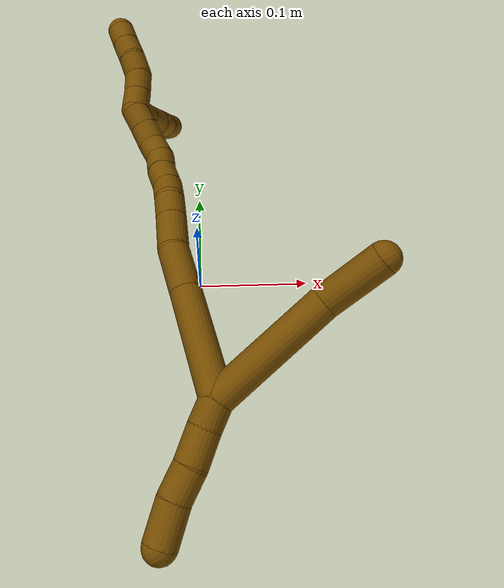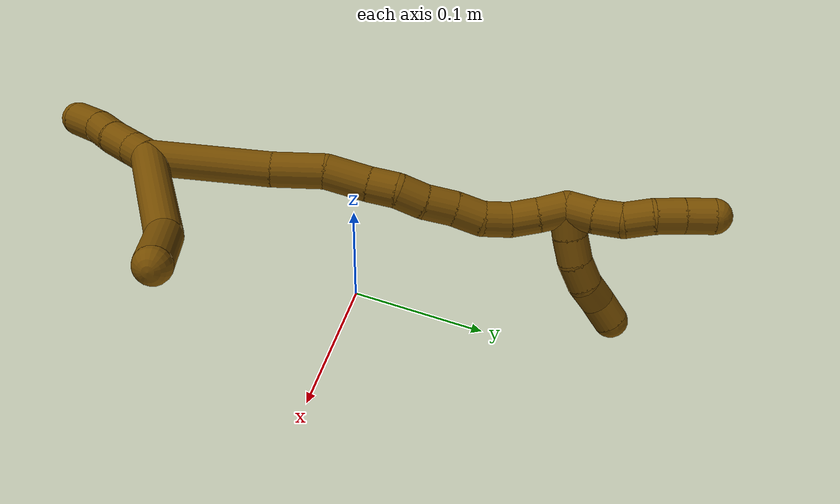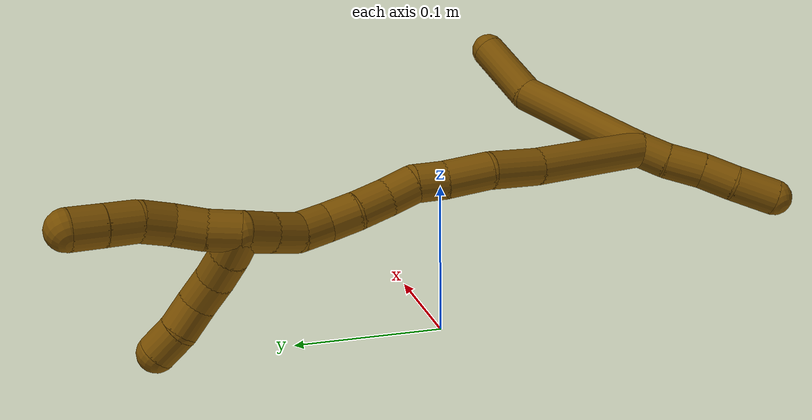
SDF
<sdf version="1.7">
 <world name="default">
  <model name="12">
   <static>0</static>
   <link name="12">
    <collision name="collision-cylinder-e_1_2_8">
     <pose>0.00521 0.019339 0.045405 -0.402648 0.105174 -0.021484</pose>
     <geometry><cylinder><radius>0.0125</radius><length>0.099252</length></cylinder></geometry>
     <surface>
      <friction><ode><mu>1.16</mu><mu2>1.16</mu2><slip1>0</slip1><slip2>0</slip2></ode></friction>
      <contact><ode><kp>1e+06</kp><kd>1</kd><max_vel>0</max_vel><min_depth>0.001</min_depth></ode></contact>
     </surface>
    </collision>
    <visual name="visual-cylinder-e_1_2_8">
     <pose>0.00521 0.019339 0.045405 -0.402648 0.105174 -0.021484</pose>
     <geometry><cylinder><radius>0.0125</radius><length>0.099252</length></cylinder></geometry>
     <material><ambient>0.466667 0.301961 0 1</ambient></material>
    </visual>
    <collision name="collision-cylinder-e_2_8_6">
     <pose>0.009434 0.04098 0.11606 -0.090934 -0.03883 0.001767</pose>
     <geometry><cylinder><radius>0.0125</radius><length>0.050748</length></cylinder></geometry>
     <surface>
      <friction><ode><mu>1.16</mu><mu2>1.16</mu2><slip1>0</slip1><slip2>0</slip2></ode></friction>
      <contact><ode><kp>1e+06</kp><kd>1</kd><max_vel>0</max_vel><min_depth>0.001</min_depth></ode></contact>
     </surface>
    </collision>
    <visual name="visual-cylinder-e_2_8_6">
     <pose>0.009434 0.04098 0.11606 -0.090934 -0.03883 0.001767</pose>
     <geometry><cylinder><radius>0.0125</radius><length>0.050748</length></cylinder></geometry>
     <material><ambient>0.466667 0.301961 0 1</ambient></material>
    </visual>
    <collision name="collision-cylinder-e_1_2_9">
     <pose>0.002166 -0.006467 -0.00761 2.43721 0.213586 0.567633</pose>
     <geometry><cylinder><radius>0.0125</radius><length>0.020439</length></cylinder></geometry>
     <surface>
      <friction><ode><mu>1.16</mu><mu2>1.16</mu2><slip1>0</slip1><slip2>0</slip2></ode></friction>
      <contact><ode><kp>1e+06</kp><kd>1</kd><max_vel>0</max_vel><min_depth>0.001</min_depth></ode></contact>
     </surface>
    </collision>
    <visual name="visual-cylinder-e_1_2_9">
     <pose>0.002166 -0.006467 -0.00761 2.43721 0.213586 0.567633</pose>
     <geometry><cylinder><radius>0.0125</radius><length>0.020439</length></cylinder></geometry>
     <material><ambient>0.466667 0.301961 0 1</ambient></material>
    </visual>
    <collision name="collision-cylinder-e_2_9_10">
     <pose>0.006646 -0.022443 -0.02375 2.302 0.17918 0.397223</pose>
     <geometry><cylinder><radius>0.0125</radius><length>0.025962</length></cylinder></geometry>
     <surface>
      <friction><ode><mu>1.16</mu><mu2>1.16</mu2><slip1>0</slip1><slip2>0</slip2></ode></friction>
      <contact><ode><kp>1e+06</kp><kd>1</kd><max_vel>0</max_vel><min_depth>0.001</min_depth></ode></contact>
     </surface>
    </collision>
    <visual name="visual-cylinder-e_2_9_10">
     <pose>0.006646 -0.022443 -0.02375 2.302 0.17918 0.397223</pose>
     <geometry><cylinder><radius>0.0125</radius><length>0.025962</length></cylinder></geometry>
     <material><ambient>0.466667 0.301961 0 1</ambient></material>
    </visual>
    <collision name="collision-cylinder-e_3_10_11">
     <pose>0.010814 -0.03943 -0.041311 2.44991 0.156828 0.429411</pose>
     <geometry><cylinder><radius>0.0125</radius><length>0.023743</length></cylinder></geometry>
     <surface>
      <friction><ode><mu>1.16</mu><mu2>1.16</mu2><slip1>0</slip1><slip2>0</slip2></ode></friction>
      <contact><ode><kp>1e+06</kp><kd>1</kd><max_vel>0</max_vel><min_depth>0.001</min_depth></ode></contact>
     </surface>
    </collision>
    <visual name="visual-cylinder-e_3_10_11">
     <pose>0.010814 -0.03943 -0.041311 2.44991 0.156828 0.429411</pose>
     <geometry><cylinder><radius>0.0125</radius><length>0.023743</length></cylinder></geometry>
     <material><ambient>0.466667 0.301961 0 1</ambient></material>
    </visual>
    <collision name="collision-cylinder-e_4_11_5">
     <pose>0.016606 -0.057453 -0.060148 2.31995 0.266955 0.598016</pose>
     <geometry><cylinder><radius>0.0125</radius><length>0.029856</length></cylinder></geometry>
     <surface>
      <friction><ode><mu>1.16</mu><mu2>1.16</mu2><slip1>0</slip1><slip2>0</slip2></ode></friction>
      <contact><ode><kp>1e+06</kp><kd>1</kd><max_vel>0</max_vel><min_depth>0.001</min_depth></ode></contact>
     </surface>
    </collision>
    <visual name="visual-cylinder-e_4_11_5">
     <pose>0.016606 -0.057453 -0.060148 2.31995 0.266955 0.598016</pose>
     <geometry><cylinder><radius>0.0125</radius><length>0.029856</length></cylinder></geometry>
     <material><ambient>0.466667 0.301961 0 1</ambient></material>
    </visual>
    <collision name="collision-cylinder-e_1_2_12">
     <pose>-0.015774 0.040805 0.001379 -1.53702 -0.368693 0.356708</pose>
     <geometry><cylinder><radius>0.0125</radius><length>0.08754</length></cylinder></geometry>
     <surface>
      <friction><ode><mu>1.16</mu><mu2>1.16</mu2><slip1>0</slip1><slip2>0</slip2></ode></friction>
      <contact><ode><kp>1e+06</kp><kd>1</kd><max_vel>0</max_vel><min_depth>0.001</min_depth></ode></contact>
     </surface>
    </collision>
    <visual name="visual-cylinder-e_1_2_12">
     <pose>-0.015774 0.040805 0.001379 -1.53702 -0.368693 0.356708</pose>
     <geometry><cylinder><radius>0.0125</radius><length>0.08754</length></cylinder></geometry>
     <material><ambient>0.466667 0.301961 0 1</ambient></material>
    </visual>
    <collision name="collision-cylinder-e_2_12_13">
     <pose>-0.039573 0.098562 0.003959 -1.50002 -0.441109 0.411818</pose>
     <geometry><cylinder><radius>0.0125</radius><length>0.037586</length></cylinder></geometry>
     <surface>
      <friction><ode><mu>1.16</mu><mu2>1.16</mu2><slip1>0</slip1><slip2>0</slip2></ode></friction>
      <contact><ode><kp>1e+06</kp><kd>1</kd><max_vel>0</max_vel><min_depth>0.001</min_depth></ode></contact>
     </surface>
    </collision>
    <visual name="visual-cylinder-e_2_12_13">
     <pose>-0.039573 0.098562 0.003959 -1.50002 -0.441109 0.411818</pose>
     <geometry><cylinder><radius>0.0125</radius><length>0.037586</length></cylinder></geometry>
     <material><ambient>0.466667 0.301961 0 1</ambient></material>
    </visual>
    <collision name="collision-cylinder-e_3_13_14">
     <pose>-0.05062 0.130765 0.007018 -1.44967 -0.194335 0.172232</pose>
     <geometry><cylinder><radius>0.0125</radius><length>0.031317</length></cylinder></geometry>
     <surface>
      <friction><ode><mu>1.16</mu><mu2>1.16</mu2><slip1>0</slip1><slip2>0</slip2></ode></friction>
      <contact><ode><kp>1e+06</kp><kd>1</kd><max_vel>0</max_vel><min_depth>0.001</min_depth></ode></contact>
     </surface>
    </collision>
    <visual name="visual-cylinder-e_3_13_14">
     <pose>-0.05062 0.130765 0.007018 -1.44967 -0.194335 0.172232</pose>
     <geometry><cylinder><radius>0.0125</radius><length>0.031317</length></cylinder></geometry>
     <material><ambient>0.466667 0.301961 0 1</ambient></material>
    </visual>
    <collision name="collision-cylinder-e_4_14_15">
     <pose>-0.05644 0.155701 0.010512 -1.40321 -0.277353 0.234802</pose>
     <geometry><cylinder><radius>0.0125</radius><length>0.020425</length></cylinder></geometry>
     <surface>
      <friction><ode><mu>1.16</mu><mu2>1.16</mu2><slip1>0</slip1><slip2>0</slip2></ode></friction>
      <contact><ode><kp>1e+06</kp><kd>1</kd><max_vel>0</max_vel><min_depth>0.001</min_depth></ode></contact>
     </surface>
    </collision>
    <visual name="visual-cylinder-e_4_14_15">
     <pose>-0.05644 0.155701 0.010512 -1.40321 -0.277353 0.234802</pose>
     <geometry><cylinder><radius>0.0125</radius><length>0.020425</length></cylinder></geometry>
     <material><ambient>0.466667 0.301961 0 1</ambient></material>
    </visual>
    <collision name="collision-cylinder-e_5_15_16">
     <pose>-0.059533 0.175402 0.011535 -1.63223 -0.029502 0.031372</pose>
     <geometry><cylinder><radius>0.0125</radius><length>0.020079</length></cylinder></geometry>
     <surface>
      <friction><ode><mu>1.16</mu><mu2>1.16</mu2><slip1>0</slip1><slip2>0</slip2></ode></friction>
      <contact><ode><kp>1e+06</kp><kd>1</kd><max_vel>0</max_vel><min_depth>0.001</min_depth></ode></contact>
     </surface>
    </collision>
    <visual name="visual-cylinder-e_5_15_16">
     <pose>-0.059533 0.175402 0.011535 -1.63223 -0.029502 0.031372</pose>
     <geometry><cylinder><radius>0.0125</radius><length>0.020079</length></cylinder></geometry>
     <material><ambient>0.466667 0.301961 0 1</ambient></material>
    </visual>
    <collision name="collision-cylinder-e_6_16_17">
     <pose>-0.061915 0.1962 0.009588 -1.69356 -0.189699 0.214364</pose>
     <geometry><cylinder><radius>0.0125</radius><length>0.022123</length></cylinder></geometry>
     <surface>
      <friction><ode><mu>1.16</mu><mu2>1.16</mu2><slip1>0</slip1><slip2>0</slip2></ode></friction>
      <contact><ode><kp>1e+06</kp><kd>1</kd><max_vel>0</max_vel><min_depth>0.001</min_depth></ode></contact>
     </surface>
    </collision>
    <visual name="visual-cylinder-e_6_16_17">
     <pose>-0.061915 0.1962 0.009588 -1.69356 -0.189699 0.214364</pose>
     <geometry><cylinder><radius>0.0125</radius><length>0.022123</length></cylinder></geometry>
     <material><ambient>0.466667 0.301961 0 1</ambient></material>
    </visual>
    <collision name="collision-cylinder-e_7_17_18">
     <pose>-0.065007 0.217323 0.008313 -1.56551 -0.097001 0.09649</pose>
     <geometry><cylinder><radius>0.0125</radius><length>0.020782</length></cylinder></geometry>
     <surface>
      <friction><ode><mu>1.16</mu><mu2>1.16</mu2><slip1>0</slip1><slip2>0</slip2></ode></friction>
      <contact><ode><kp>1e+06</kp><kd>1</kd><max_vel>0</max_vel><min_depth>0.001</min_depth></ode></contact>
     </surface>
    </collision>
    <visual name="visual-cylinder-e_7_17_18">
     <pose>-0.065007 0.217323 0.008313 -1.56551 -0.097001 0.09649</pose>
     <geometry><cylinder><radius>0.0125</radius><length>0.020782</length></cylinder></geometry>
     <material><ambient>0.466667 0.301961 0 1</ambient></material>
    </visual>
    <collision name="collision-cylinder-e_8_18_19">
     <pose>-0.069639 0.236933 0.006834 -1.73482 -0.368355 0.432446</pose>
     <geometry><cylinder><radius>0.0125</radius><length>0.020138</length></cylinder></geometry>
     <surface>
      <friction><ode><mu>1.16</mu><mu2>1.16</mu2><slip1>0</slip1><slip2>0</slip2></ode></friction>
      <contact><ode><kp>1e+06</kp><kd>1</kd><max_vel>0</max_vel><min_depth>0.001</min_depth></ode></contact>
     </surface>
    </collision>
    <visual name="visual-cylinder-e_8_18_19">
     <pose>-0.069639 0.236933 0.006834 -1.73482 -0.368355 0.432446</pose>
     <geometry><cylinder><radius>0.0125</radius><length>0.020138</length></cylinder></geometry>
     <material><ambient>0.466667 0.301961 0 1</ambient></material>
    </visual>
    <collision name="collision-cylinder-e_9_19_20">
     <pose>-0.079258 0.254207 0.005431 -1.55436 -0.642478 0.632697</pose>
     <geometry><cylinder><radius>0.0125</radius><length>0.020005</length></cylinder></geometry>
     <surface>
      <friction><ode><mu>1.16</mu><mu2>1.16</mu2><slip1>0</slip1><slip2>0</slip2></ode></friction>
      <contact><ode><kp>1e+06</kp><kd>1</kd><max_vel>0</max_vel><min_depth>0.001</min_depth></ode></contact>
     </surface>
    </collision>
    <visual name="visual-cylinder-e_9_19_20">
     <pose>-0.079258 0.254207 0.005431 -1.55436 -0.642478 0.632697</pose>
     <geometry><cylinder><radius>0.0125</radius><length>0.020005</length></cylinder></geometry>
     <material><ambient>0.466667 0.301961 0 1</ambient></material>
    </visual>
    <collision name="collision-cylinder-e_10_20_1">
     <pose>-0.091717 0.269846 0.005542 -1.57348 -0.702898 0.704633</pose>
     <geometry><cylinder><radius>0.0125</radius><length>0.020004</length></cylinder></geometry>
     <surface>
      <friction><ode><mu>1.16</mu><mu2>1.16</mu2><slip1>0</slip1><slip2>0</slip2></ode></friction>
      <contact><ode><kp>1e+06</kp><kd>1</kd><max_vel>0</max_vel><min_depth>0.001</min_depth></ode></contact>
     </surface>
    </collision>
    <visual name="visual-cylinder-e_10_20_1">
     <pose>-0.091717 0.269846 0.005542 -1.57348 -0.702898 0.704633</pose>
     <geometry><cylinder><radius>0.0125</radius><length>0.020004</length></cylinder></geometry>
     <material><ambient>0.466667 0.301961 0 1</ambient></material>
    </visual>
    <collision name="collision-cylinder-e_1_1_21">
     <pose>-0.100829 0.286405 0.009167 -1.18321 -0.267865 0.180566</pose>
     <geometry><cylinder><radius>0.0125</radius><length>0.02</length></cylinder></geometry>
     <surface>
      <friction><ode><mu>1.16</mu><mu2>1.16</mu2><slip1>0</slip1><slip2>0</slip2></ode></friction>
      <contact><ode><kp>1e+06</kp><kd>1</kd><max_vel>0</max_vel><min_depth>0.001</min_depth></ode></contact>
     </surface>
    </collision>
    <visual name="visual-cylinder-e_1_1_21">
     <pose>-0.100829 0.286405 0.009167 -1.18321 -0.267865 0.180566</pose>
     <geometry><cylinder><radius>0.0125</radius><length>0.02</length></cylinder></geometry>
     <material><ambient>0.466667 0.301961 0 1</ambient></material>
    </visual>
    <collision name="collision-cylinder-e_2_21_22">
     <pose>-0.10736 0.303651 0.016776 -1.126 -0.398873 0.253765</pose>
     <geometry><cylinder><radius>0.0125</radius><length>0.02</length></cylinder></geometry>
     <surface>
      <friction><ode><mu>1.16</mu><mu2>1.16</mu2><slip1>0</slip1><slip2>0</slip2></ode></friction>
      <contact><ode><kp>1e+06</kp><kd>1</kd><max_vel>0</max_vel><min_depth>0.001</min_depth></ode></contact>
     </surface>
    </collision>
    <visual name="visual-cylinder-e_2_21_22">
     <pose>-0.10736 0.303651 0.016776 -1.126 -0.398873 0.253765</pose>
     <geometry><cylinder><radius>0.0125</radius><length>0.02</length></cylinder></geometry>
     <material><ambient>0.466667 0.301961 0 1</ambient></material>
    </visual>
    <collision name="collision-cylinder-e_3_22_23">
     <pose>-0.117255 0.319858 0.022022 -1.40989 -0.644915 0.553913</pose>
     <geometry><cylinder><radius>0.0125</radius><length>0.02</length></cylinder></geometry>
     <surface>
      <friction><ode><mu>1.16</mu><mu2>1.16</mu2><slip1>0</slip1><slip2>0</slip2></ode></friction>
      <contact><ode><kp>1e+06</kp><kd>1</kd><max_vel>0</max_vel><min_depth>0.001</min_depth></ode></contact>
     </surface>
    </collision>
    <visual name="visual-cylinder-e_3_22_23">
     <pose>-0.117255 0.319858 0.022022 -1.40989 -0.644915 0.553913</pose>
     <geometry><cylinder><radius>0.0125</radius><length>0.02</length></cylinder></geometry>
     <material><ambient>0.466667 0.301961 0 1</ambient></material>
    </visual>
    <collision name="collision-cylinder-e_4_23_24">
     <pose>-0.127842 0.336638 0.02323 -1.57889 -0.475325 0.479043</pose>
     <geometry><cylinder><radius>0.0125</radius><length>0.02</length></cylinder></geometry>
     <surface>
      <friction><ode><mu>1.16</mu><mu2>1.16</mu2><slip1>0</slip1><slip2>0</slip2></ode></friction>
      <contact><ode><kp>1e+06</kp><kd>1</kd><max_vel>0</max_vel><min_depth>0.001</min_depth></ode></contact>
     </surface>
    </collision>
    <visual name="visual-cylinder-e_4_23_24">
     <pose>-0.127842 0.336638 0.02323 -1.57889 -0.475325 0.479043</pose>
     <geometry><cylinder><radius>0.0125</radius><length>0.02</length></cylinder></geometry>
     <material><ambient>0.466667 0.301961 0 1</ambient></material>
    </visual>
    <collision name="collision-cylinder-e_5_24_4">
     <pose>-0.136806 0.354513 0.023333 -1.55136 -0.454132 0.445679</pose>
     <geometry><cylinder><radius>0.0125</radius><length>0.02</length></cylinder></geometry>
     <surface>
      <friction><ode><mu>1.16</mu><mu2>1.16</mu2><slip1>0</slip1><slip2>0</slip2></ode></friction>
      <contact><ode><kp>1e+06</kp><kd>1</kd><max_vel>0</max_vel><min_depth>0.001</min_depth></ode></contact>
     </surface>
    </collision>
    <visual name="visual-cylinder-e_5_24_4">
     <pose>-0.136806 0.354513 0.023333 -1.55136 -0.454132 0.445679</pose>
     <geometry><cylinder><radius>0.0125</radius><length>0.02</length></cylinder></geometry>
     <material><ambient>0.466667 0.301961 0 1</ambient></material>
    </visual>
    <collision name="collision-cylinder-e_1_1_25">
     <pose>-0.089997 0.283212 0.005194 -1.62798 0.958868 -1.00646</pose>
     <geometry><cylinder><radius>0.0125</radius><length>0.02</length></cylinder></geometry>
     <surface>
      <friction><ode><mu>1.16</mu><mu2>1.16</mu2><slip1>0</slip1><slip2>0</slip2></ode></friction>
      <contact><ode><kp>1e+06</kp><kd>1</kd><max_vel>0</max_vel><min_depth>0.001</min_depth></ode></contact>
     </surface>
    </collision>
    <visual name="visual-cylinder-e_1_1_25">
     <pose>-0.089997 0.283212 0.005194 -1.62798 0.958868 -1.00646</pose>
     <geometry><cylinder><radius>0.0125</radius><length>0.02</length></cylinder></geometry>
     <material><ambient>0.466667 0.301961 0 1</ambient></material>
    </visual>
    <collision name="collision-cylinder-e_2_25_26">
     <pose>-0.074127 0.295345 0.004759 -1.58741 0.876451 -0.88929</pose>
     <geometry><cylinder><radius>0.0125</radius><length>0.02</length></cylinder></geometry>
     <surface>
      <friction><ode><mu>1.16</mu><mu2>1.16</mu2><slip1>0</slip1><slip2>0</slip2></ode></friction>
      <contact><ode><kp>1e+06</kp><kd>1</kd><max_vel>0</max_vel><min_depth>0.001</min_depth></ode></contact>
     </surface>
    </collision>
    <visual name="visual-cylinder-e_2_25_26">
     <pose>-0.074127 0.295345 0.004759 -1.58741 0.876451 -0.88929</pose>
     <geometry><cylinder><radius>0.0125</radius><length>0.02</length></cylinder></geometry>
     <material><ambient>0.466667 0.301961 0 1</ambient></material>
    </visual>
    <collision name="collision-cylinder-e_3_26_27">
     <pose>-0.060129 0.309418 0.003544 -1.71429 0.683295 -0.779327</pose>
     <geometry><cylinder><radius>0.0125</radius><length>0.02</length></cylinder></geometry>
     <surface>
      <friction><ode><mu>1.16</mu><mu2>1.16</mu2><slip1>0</slip1><slip2>0</slip2></ode></friction>
      <contact><ode><kp>1e+06</kp><kd>1</kd><max_vel>0</max_vel><min_depth>0.001</min_depth></ode></contact>
     </surface>
    </collision>
    <visual name="visual-cylinder-e_3_26_27">
     <pose>-0.060129 0.309418 0.003544 -1.71429 0.683295 -0.779327</pose>
     <geometry><cylinder><radius>0.0125</radius><length>0.02</length></cylinder></geometry>
     <material><ambient>0.466667 0.301961 0 1</ambient></material>
    </visual>
    <collision name="collision-cylinder-e_4_27_28">
     <pose>-0.049183 0.325389 -0.000685 -1.93046 0.481567 -0.681645</pose>
     <geometry><cylinder><radius>0.0125</radius><length>0.02</length></cylinder></geometry>
     <surface>
      <friction><ode><mu>1.16</mu><mu2>1.16</mu2><slip1>0</slip1><slip2>0</slip2></ode></friction>
      <contact><ode><kp>1e+06</kp><kd>1</kd><max_vel>0</max_vel><min_depth>0.001</min_depth></ode></contact>
     </surface>
    </collision>
    <visual name="visual-cylinder-e_4_27_28">
     <pose>-0.049183 0.325389 -0.000685 -1.93046 0.481567 -0.681645</pose>
     <geometry><cylinder><radius>0.0125</radius><length>0.02</length></cylinder></geometry>
     <material><ambient>0.466667 0.301961 0 1</ambient></material>
    </visual>
    <collision name="collision-cylinder-e_5_28_3">
     <pose>-0.039546 0.342302 -0.004634 -1.66685 0.524211 -0.574402</pose>
     <geometry><cylinder><radius>0.0125</radius><length>0.02</length></cylinder></geometry>
     <surface>
      <friction><ode><mu>1.16</mu><mu2>1.16</mu2><slip1>0</slip1><slip2>0</slip2></ode></friction>
      <contact><ode><kp>1e+06</kp><kd>1</kd><max_vel>0</max_vel><min_depth>0.001</min_depth></ode></contact>
     </surface>
    </collision>
    <visual name="visual-cylinder-e_5_28_3">
     <pose>-0.039546 0.342302 -0.004634 -1.66685 0.524211 -0.574402</pose>
     <geometry><cylinder><radius>0.0125</radius><length>0.02</length></cylinder></geometry>
     <material><ambient>0.466667 0.301961 0 1</ambient></material>
    </visual>
    <collision name="collision-sphere-3">
     <pose>-0.034541 0.350919 -0.005464 0 -0 0</pose>
     <geometry><sphere><radius>0.0125</radius></sphere></geometry>
     <surface>
      <friction><ode><mu>1.16</mu><mu2>1.16</mu2><slip1>0</slip1><slip2>0</slip2></ode></friction>
      <contact><ode><kp>1e+06</kp><kd>1</kd><max_vel>0</max_vel><min_depth>0.001</min_depth></ode></contact>
     </surface>
    </collision>
    <visual name="visual-sphere-3">
     <pose>-0.034541 0.350919 -0.005464 0 -0 0</pose>
     <geometry><sphere><radius>0.0125</radius></sphere></geometry>
     <material><ambient>0.466667 0.301961 0 1</ambient></material>
    </visual>
    <collision name="collision-sphere-28">
     <pose>-0.044552 0.333685 -0.003804 0 -0 0</pose>
     <geometry><sphere><radius>0.0125</radius></sphere></geometry>
     <surface>
      <friction><ode><mu>1.16</mu><mu2>1.16</mu2><slip1>0</slip1><slip2>0</slip2></ode></friction>
      <contact><ode><kp>1e+06</kp><kd>1</kd><max_vel>0</max_vel><min_depth>0.001</min_depth></ode></contact>
     </surface>
    </collision>
    <visual name="visual-sphere-28">
     <pose>-0.044552 0.333685 -0.003804 0 -0 0</pose>
     <geometry><sphere><radius>0.0125</radius></sphere></geometry>
     <material><ambient>0.466667 0.301961 0 1</ambient></material>
    </visual>
    <collision name="collision-sphere-27">
     <pose>-0.053815 0.317094 0.002435 0 -0 0</pose>
     <geometry><sphere><radius>0.0125</radius></sphere></geometry>
     <surface>
      <friction><ode><mu>1.16</mu><mu2>1.16</mu2><slip1>0</slip1><slip2>0</slip2></ode></friction>
      <contact><ode><kp>1e+06</kp><kd>1</kd><max_vel>0</max_vel><min_depth>0.001</min_depth></ode></contact>
     </surface>
    </collision>
    <visual name="visual-sphere-27">
     <pose>-0.053815 0.317094 0.002435 0 -0 0</pose>
     <geometry><sphere><radius>0.0125</radius></sphere></geometry>
     <material><ambient>0.466667 0.301961 0 1</ambient></material>
    </visual>
    <collision name="collision-sphere-26">
     <pose>-0.066442 0.301743 0.004653 0 -0 0</pose>
     <geometry><sphere><radius>0.0125</radius></sphere></geometry>
     <surface>
      <friction><ode><mu>1.16</mu><mu2>1.16</mu2><slip1>0</slip1><slip2>0</slip2></ode></friction>
      <contact><ode><kp>1e+06</kp><kd>1</kd><max_vel>0</max_vel><min_depth>0.001</min_depth></ode></contact>
     </surface>
    </collision>
    <visual name="visual-sphere-26">
     <pose>-0.066442 0.301743 0.004653 0 -0 0</pose>
     <geometry><sphere><radius>0.0125</radius></sphere></geometry>
     <material><ambient>0.466667 0.301961 0 1</ambient></material>
    </visual>
    <collision name="collision-sphere-25">
     <pose>-0.081812 0.288947 0.004865 0 -0 0</pose>
     <geometry><sphere><radius>0.0125</radius></sphere></geometry>
     <surface>
      <friction><ode><mu>1.16</mu><mu2>1.16</mu2><slip1>0</slip1><slip2>0</slip2></ode></friction>
      <contact><ode><kp>1e+06</kp><kd>1</kd><max_vel>0</max_vel><min_depth>0.001</min_depth></ode></contact>
     </surface>
    </collision>
    <visual name="visual-sphere-25">
     <pose>-0.081812 0.288947 0.004865 0 -0 0</pose>
     <geometry><sphere><radius>0.0125</radius></sphere></geometry>
     <material><ambient>0.466667 0.301961 0 1</ambient></material>
    </visual>
    <collision name="collision-sphere-4">
     <pose>-0.141192 0.363498 0.023507 0 -0 0</pose>
     <geometry><sphere><radius>0.0125</radius></sphere></geometry>
     <surface>
      <friction><ode><mu>1.16</mu><mu2>1.16</mu2><slip1>0</slip1><slip2>0</slip2></ode></friction>
      <contact><ode><kp>1e+06</kp><kd>1</kd><max_vel>0</max_vel><min_depth>0.001</min_depth></ode></contact>
     </surface>
    </collision>
    <visual name="visual-sphere-4">
     <pose>-0.141192 0.363498 0.023507 0 -0 0</pose>
     <geometry><sphere><radius>0.0125</radius></sphere></geometry>
     <material><ambient>0.466667 0.301961 0 1</ambient></material>
    </visual>
    <collision name="collision-sphere-24">
     <pose>-0.132419 0.345529 0.023158 0 -0 0</pose>
     <geometry><sphere><radius>0.0125</radius></sphere></geometry>
     <surface>
      <friction><ode><mu>1.16</mu><mu2>1.16</mu2><slip1>0</slip1><slip2>0</slip2></ode></friction>
      <contact><ode><kp>1e+06</kp><kd>1</kd><max_vel>0</max_vel><min_depth>0.001</min_depth></ode></contact>
     </surface>
    </collision>
    <visual name="visual-sphere-24">
     <pose>-0.132419 0.345529 0.023158 0 -0 0</pose>
     <geometry><sphere><radius>0.0125</radius></sphere></geometry>
     <material><ambient>0.466667 0.301961 0 1</ambient></material>
    </visual>
    <collision name="collision-sphere-23">
     <pose>-0.123266 0.327746 0.023302 0 -0 0</pose>
     <geometry><sphere><radius>0.0125</radius></sphere></geometry>
     <surface>
      <friction><ode><mu>1.16</mu><mu2>1.16</mu2><slip1>0</slip1><slip2>0</slip2></ode></friction>
      <contact><ode><kp>1e+06</kp><kd>1</kd><max_vel>0</max_vel><min_depth>0.001</min_depth></ode></contact>
     </surface>
    </collision>
    <visual name="visual-sphere-23">
     <pose>-0.123266 0.327746 0.023302 0 -0 0</pose>
     <geometry><sphere><radius>0.0125</radius></sphere></geometry>
     <material><ambient>0.466667 0.301961 0 1</ambient></material>
    </visual>
    <collision name="collision-sphere-22">
     <pose>-0.111244 0.31197 0.020741 0 -0 0</pose>
     <geometry><sphere><radius>0.0125</radius></sphere></geometry>
     <surface>
      <friction><ode><mu>1.16</mu><mu2>1.16</mu2><slip1>0</slip1><slip2>0</slip2></ode></friction>
      <contact><ode><kp>1e+06</kp><kd>1</kd><max_vel>0</max_vel><min_depth>0.001</min_depth></ode></contact>
     </surface>
    </collision>
    <visual name="visual-sphere-22">
     <pose>-0.111244 0.31197 0.020741 0 -0 0</pose>
     <geometry><sphere><radius>0.0125</radius></sphere></geometry>
     <material><ambient>0.466667 0.301961 0 1</ambient></material>
    </visual>
    <collision name="collision-sphere-21">
     <pose>-0.103476 0.295333 0.012811 0 -0 0</pose>
     <geometry><sphere><radius>0.0125</radius></sphere></geometry>
     <surface>
      <friction><ode><mu>1.16</mu><mu2>1.16</mu2><slip1>0</slip1><slip2>0</slip2></ode></friction>
      <contact><ode><kp>1e+06</kp><kd>1</kd><max_vel>0</max_vel><min_depth>0.001</min_depth></ode></contact>
     </surface>
    </collision>
    <visual name="visual-sphere-21">
     <pose>-0.103476 0.295333 0.012811 0 -0 0</pose>
     <geometry><sphere><radius>0.0125</radius></sphere></geometry>
     <material><ambient>0.466667 0.301961 0 1</ambient></material>
    </visual>
    <collision name="collision-sphere-1">
     <pose>-0.098182 0.277477 0.005522 0 -0 0</pose>
     <geometry><sphere><radius>0.0125</radius></sphere></geometry>
     <surface>
      <friction><ode><mu>1.16</mu><mu2>1.16</mu2><slip1>0</slip1><slip2>0</slip2></ode></friction>
      <contact><ode><kp>1e+06</kp><kd>1</kd><max_vel>0</max_vel><min_depth>0.001</min_depth></ode></contact>
     </surface>
    </collision>
    <visual name="visual-sphere-1">
     <pose>-0.098182 0.277477 0.005522 0 -0 0</pose>
     <geometry><sphere><radius>0.0125</radius></sphere></geometry>
     <material><ambient>0.466667 0.301961 0 1</ambient></material>
    </visual>
    <collision name="collision-sphere-11">
     <pose>0.012668 -0.046909 -0.050342 0 -0 0</pose>
     <geometry><sphere><radius>0.0125</radius></sphere></geometry>
     <surface>
      <friction><ode><mu>1.16</mu><mu2>1.16</mu2><slip1>0</slip1><slip2>0</slip2></ode></friction>
      <contact><ode><kp>1e+06</kp><kd>1</kd><max_vel>0</max_vel><min_depth>0.001</min_depth></ode></contact>
     </surface>
    </collision>
    <visual name="visual-sphere-11">
     <pose>0.012668 -0.046909 -0.050342 0 -0 0</pose>
     <geometry><sphere><radius>0.0125</radius></sphere></geometry>
     <material><ambient>0.466667 0.301961 0 1</ambient></material>
    </visual>
    <collision name="collision-sphere-10">
     <pose>0.008959 -0.031951 -0.03228 0 -0 0</pose>
     <geometry><sphere><radius>0.0125</radius></sphere></geometry>
     <surface>
      <friction><ode><mu>1.16</mu><mu2>1.16</mu2><slip1>0</slip1><slip2>0</slip2></ode></friction>
      <contact><ode><kp>1e+06</kp><kd>1</kd><max_vel>0</max_vel><min_depth>0.001</min_depth></ode></contact>
     </surface>
    </collision>
    <visual name="visual-sphere-10">
     <pose>0.008959 -0.031951 -0.03228 0 -0 0</pose>
     <geometry><sphere><radius>0.0125</radius></sphere></geometry>
     <material><ambient>0.466667 0.301961 0 1</ambient></material>
    </visual>
    <collision name="collision-sphere-6">
     <pose>0.008449 0.043282 0.14131 0 -0 0</pose>
     <geometry><sphere><radius>0.0125</radius></sphere></geometry>
     <surface>
      <friction><ode><mu>1.16</mu><mu2>1.16</mu2><slip1>0</slip1><slip2>0</slip2></ode></friction>
      <contact><ode><kp>1e+06</kp><kd>1</kd><max_vel>0</max_vel><min_depth>0.001</min_depth></ode></contact>
     </surface>
    </collision>
    <visual name="visual-sphere-6">
     <pose>0.008449 0.043282 0.14131 0 -0 0</pose>
     <geometry><sphere><radius>0.0125</radius></sphere></geometry>
     <material><ambient>0.466667 0.301961 0 1</ambient></material>
    </visual>
    <collision name="collision-sphere-9">
     <pose>0.004332 -0.012935 -0.01522 0 -0 0</pose>
     <geometry><sphere><radius>0.0125</radius></sphere></geometry>
     <surface>
      <friction><ode><mu>1.16</mu><mu2>1.16</mu2><slip1>0</slip1><slip2>0</slip2></ode></friction>
      <contact><ode><kp>1e+06</kp><kd>1</kd><max_vel>0</max_vel><min_depth>0.001</min_depth></ode></contact>
     </surface>
    </collision>
    <visual name="visual-sphere-9">
     <pose>0.004332 -0.012935 -0.01522 0 -0 0</pose>
     <geometry><sphere><radius>0.0125</radius></sphere></geometry>
     <material><ambient>0.466667 0.301961 0 1</ambient></material>
    </visual>
    <collision name="collision-sphere-2">
     <geometry><sphere><radius>0.0125</radius></sphere></geometry>
     <surface>
      <friction><ode><mu>1.16</mu><mu2>1.16</mu2><slip1>0</slip1><slip2>0</slip2></ode></friction>
      <contact><ode><kp>1e+06</kp><kd>1</kd><max_vel>0</max_vel><min_depth>0.001</min_depth></ode></contact>
     </surface>
    </collision>
    <visual name="visual-sphere-2">
     <geometry><sphere><radius>0.0125</radius></sphere></geometry>
     <material><ambient>0.466667 0.301961 0 1</ambient></material>
    </visual>
    <collision name="collision-sphere-19">
     <pose>-0.073265 0.246201 0.0053 0 -0 0</pose>
     <geometry><sphere><radius>0.0125</radius></sphere></geometry>
     <surface>
      <friction><ode><mu>1.16</mu><mu2>1.16</mu2><slip1>0</slip1><slip2>0</slip2></ode></friction>
      <contact><ode><kp>1e+06</kp><kd>1</kd><max_vel>0</max_vel><min_depth>0.001</min_depth></ode></contact>
     </surface>
    </collision>
    <visual name="visual-sphere-19">
     <pose>-0.073265 0.246201 0.0053 0 -0 0</pose>
     <geometry><sphere><radius>0.0125</radius></sphere></geometry>
     <material><ambient>0.466667 0.301961 0 1</ambient></material>
    </visual>
    <collision name="collision-sphere-8">
     <pose>0.010419 0.038677 0.09081 0 -0 0</pose>
     <geometry><sphere><radius>0.0125</radius></sphere></geometry>
     <surface>
      <friction><ode><mu>1.16</mu><mu2>1.16</mu2><slip1>0</slip1><slip2>0</slip2></ode></friction>
      <contact><ode><kp>1e+06</kp><kd>1</kd><max_vel>0</max_vel><min_depth>0.001</min_depth></ode></contact>
     </surface>
    </collision>
    <visual name="visual-sphere-8">
     <pose>0.010419 0.038677 0.09081 0 -0 0</pose>
     <geometry><sphere><radius>0.0125</radius></sphere></geometry>
     <material><ambient>0.466667 0.301961 0 1</ambient></material>
    </visual>
    <collision name="collision-sphere-5">
     <pose>0.020544 -0.067997 -0.069954 0 -0 0</pose>
     <geometry><sphere><radius>0.0125</radius></sphere></geometry>
     <surface>
      <friction><ode><mu>1.16</mu><mu2>1.16</mu2><slip1>0</slip1><slip2>0</slip2></ode></friction>
      <contact><ode><kp>1e+06</kp><kd>1</kd><max_vel>0</max_vel><min_depth>0.001</min_depth></ode></contact>
     </surface>
    </collision>
    <visual name="visual-sphere-5">
     <pose>0.020544 -0.067997 -0.069954 0 -0 0</pose>
     <geometry><sphere><radius>0.0125</radius></sphere></geometry>
     <material><ambient>0.466667 0.301961 0 1</ambient></material>
    </visual>
    <collision name="collision-sphere-12">
     <pose>-0.031549 0.08161 0.002758 0 -0 0</pose>
     <geometry><sphere><radius>0.0125</radius></sphere></geometry>
     <surface>
      <friction><ode><mu>1.16</mu><mu2>1.16</mu2><slip1>0</slip1><slip2>0</slip2></ode></friction>
      <contact><ode><kp>1e+06</kp><kd>1</kd><max_vel>0</max_vel><min_depth>0.001</min_depth></ode></contact>
     </surface>
    </collision>
    <visual name="visual-sphere-12">
     <pose>-0.031549 0.08161 0.002758 0 -0 0</pose>
     <geometry><sphere><radius>0.0125</radius></sphere></geometry>
     <material><ambient>0.466667 0.301961 0 1</ambient></material>
    </visual>
    <collision name="collision-sphere-13">
     <pose>-0.047596 0.115514 0.005161 0 -0 0</pose>
     <geometry><sphere><radius>0.0125</radius></sphere></geometry>
     <surface>
      <friction><ode><mu>1.16</mu><mu2>1.16</mu2><slip1>0</slip1><slip2>0</slip2></ode></friction>
      <contact><ode><kp>1e+06</kp><kd>1</kd><max_vel>0</max_vel><min_depth>0.001</min_depth></ode></contact>
     </surface>
    </collision>
    <visual name="visual-sphere-13">
     <pose>-0.047596 0.115514 0.005161 0 -0 0</pose>
     <geometry><sphere><radius>0.0125</radius></sphere></geometry>
     <material><ambient>0.466667 0.301961 0 1</ambient></material>
    </visual>
    <collision name="collision-sphere-14">
     <pose>-0.053644 0.146016 0.008874 0 -0 0</pose>
     <geometry><sphere><radius>0.0125</radius></sphere></geometry>
     <surface>
      <friction><ode><mu>1.16</mu><mu2>1.16</mu2><slip1>0</slip1><slip2>0</slip2></ode></friction>
      <contact><ode><kp>1e+06</kp><kd>1</kd><max_vel>0</max_vel><min_depth>0.001</min_depth></ode></contact>
     </surface>
    </collision>
    <visual name="visual-sphere-14">
     <pose>-0.053644 0.146016 0.008874 0 -0 0</pose>
     <geometry><sphere><radius>0.0125</radius></sphere></geometry>
     <material><ambient>0.466667 0.301961 0 1</ambient></material>
    </visual>
    <collision name="collision-sphere-15">
     <pose>-0.059237 0.165386 0.012151 0 -0 0</pose>
     <geometry><sphere><radius>0.0125</radius></sphere></geometry>
     <surface>
      <friction><ode><mu>1.16</mu><mu2>1.16</mu2><slip1>0</slip1><slip2>0</slip2></ode></friction>
      <contact><ode><kp>1e+06</kp><kd>1</kd><max_vel>0</max_vel><min_depth>0.001</min_depth></ode></contact>
     </surface>
    </collision>
    <visual name="visual-sphere-15">
     <pose>-0.059237 0.165386 0.012151 0 -0 0</pose>
     <geometry><sphere><radius>0.0125</radius></sphere></geometry>
     <material><ambient>0.466667 0.301961 0 1</ambient></material>
    </visual>
    <collision name="collision-sphere-16">
     <pose>-0.059829 0.185418 0.010919 0 -0 0</pose>
     <geometry><sphere><radius>0.0125</radius></sphere></geometry>
     <surface>
      <friction><ode><mu>1.16</mu><mu2>1.16</mu2><slip1>0</slip1><slip2>0</slip2></ode></friction>
      <contact><ode><kp>1e+06</kp><kd>1</kd><max_vel>0</max_vel><min_depth>0.001</min_depth></ode></contact>
     </surface>
    </collision>
    <visual name="visual-sphere-16">
     <pose>-0.059829 0.185418 0.010919 0 -0 0</pose>
     <geometry><sphere><radius>0.0125</radius></sphere></geometry>
     <material><ambient>0.466667 0.301961 0 1</ambient></material>
    </visual>
    <collision name="collision-sphere-17">
     <pose>-0.064001 0.206981 0.008258 0 -0 0</pose>
     <geometry><sphere><radius>0.0125</radius></sphere></geometry>
     <surface>
      <friction><ode><mu>1.16</mu><mu2>1.16</mu2><slip1>0</slip1><slip2>0</slip2></ode></friction>
      <contact><ode><kp>1e+06</kp><kd>1</kd><max_vel>0</max_vel><min_depth>0.001</min_depth></ode></contact>
     </surface>
    </collision>
    <visual name="visual-sphere-17">
     <pose>-0.064001 0.206981 0.008258 0 -0 0</pose>
     <geometry><sphere><radius>0.0125</radius></sphere></geometry>
     <material><ambient>0.466667 0.301961 0 1</ambient></material>
    </visual>
    <collision name="collision-sphere-18">
     <pose>-0.066013 0.227665 0.008368 0 -0 0</pose>
     <geometry><sphere><radius>0.0125</radius></sphere></geometry>
     <surface>
      <friction><ode><mu>1.16</mu><mu2>1.16</mu2><slip1>0</slip1><slip2>0</slip2></ode></friction>
      <contact><ode><kp>1e+06</kp><kd>1</kd><max_vel>0</max_vel><min_depth>0.001</min_depth></ode></contact>
     </surface>
    </collision>
    <visual name="visual-sphere-18">
     <pose>-0.066013 0.227665 0.008368 0 -0 0</pose>
     <geometry><sphere><radius>0.0125</radius></sphere></geometry>
     <material><ambient>0.466667 0.301961 0 1</ambient></material>
    </visual>
    <collision name="collision-sphere-20">
     <pose>-0.085251 0.262214 0.005563 0 -0 0</pose>
     <geometry><sphere><radius>0.0125</radius></sphere></geometry>
     <surface>
      <friction><ode><mu>1.16</mu><mu2>1.16</mu2><slip1>0</slip1><slip2>0</slip2></ode></friction>
      <contact><ode><kp>1e+06</kp><kd>1</kd><max_vel>0</max_vel><min_depth>0.001</min_depth></ode></contact>
     </surface>
    </collision>
    <visual name="visual-sphere-20">
     <pose>-0.085251 0.262214 0.005563 0 -0 0</pose>
     <geometry><sphere><radius>0.0125</radius></sphere></geometry>
     <material><ambient>0.466667 0.301961 0 1</ambient></material>
    </visual>
    <inertial>
     <pose>-0.040589 0.141271 0.014106 0 -0 0</pose>
     <mass>0.75</mass>
     <inertia>
      <ixx>0.000208</ixx>
      <ixy>0</ixy>
      <ixz>0</ixz>
      <iyy>0.000162</iyy>
      <iyz>0</iyz>
      <izz>-9.1e-05</izz>
     </inertia>
    </inertial>
   </link>
   <pose>0.012829 -0.148665 0.113185 -0.544449 0.857858 -0.373932</pose>
  </model>
 </world>
</sdf>
